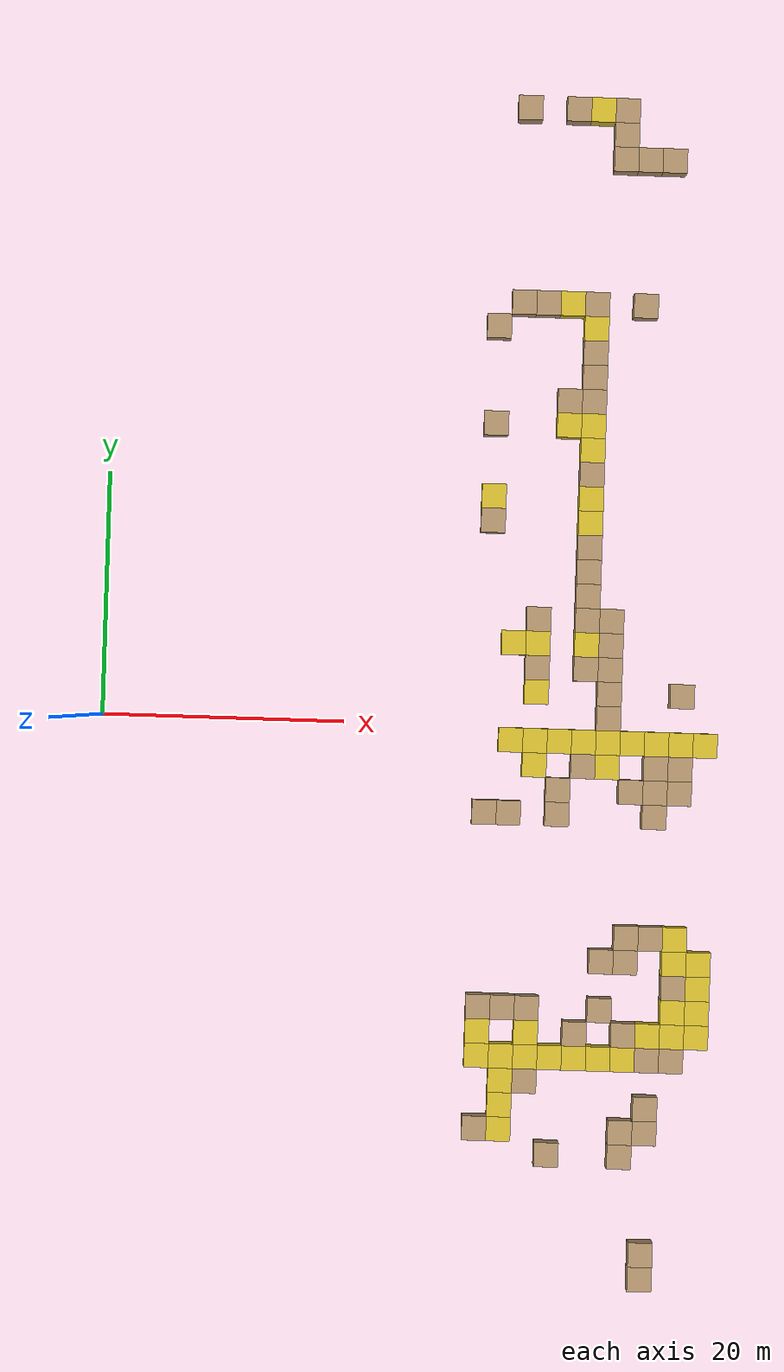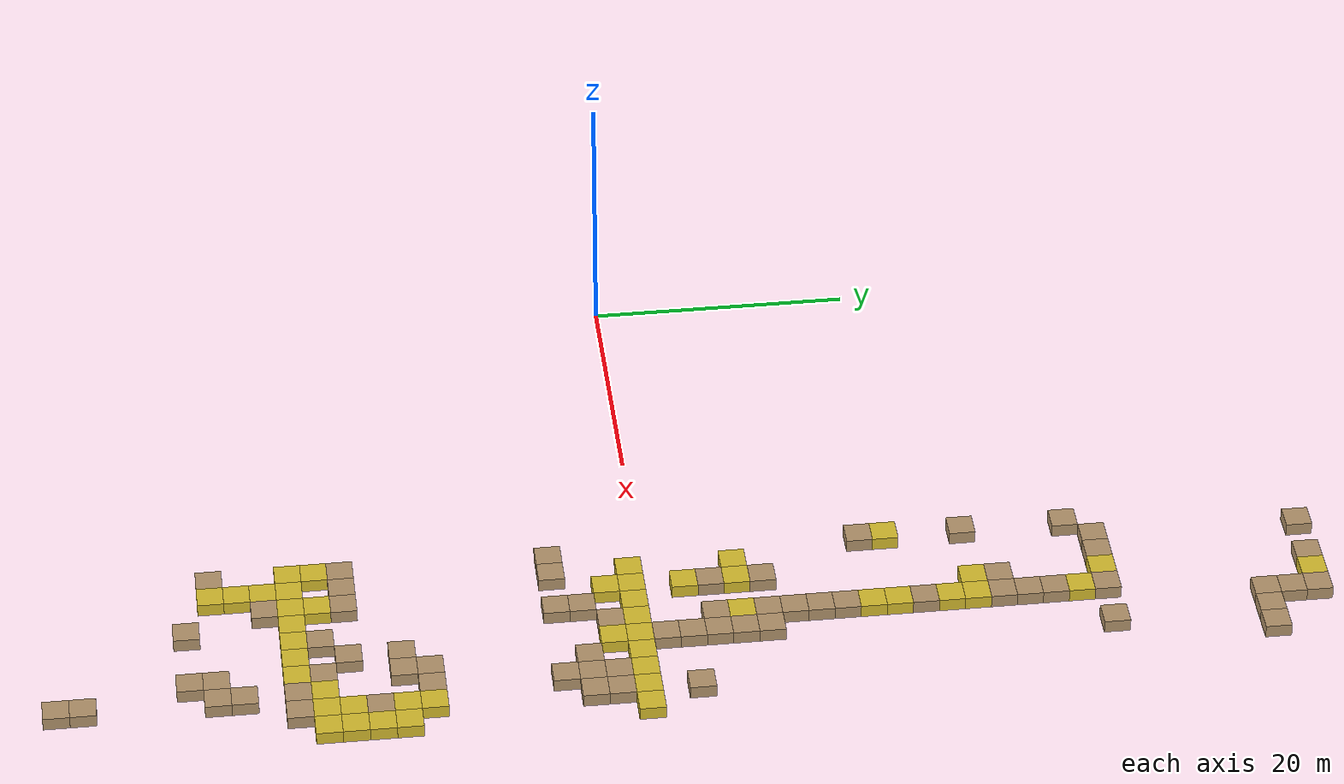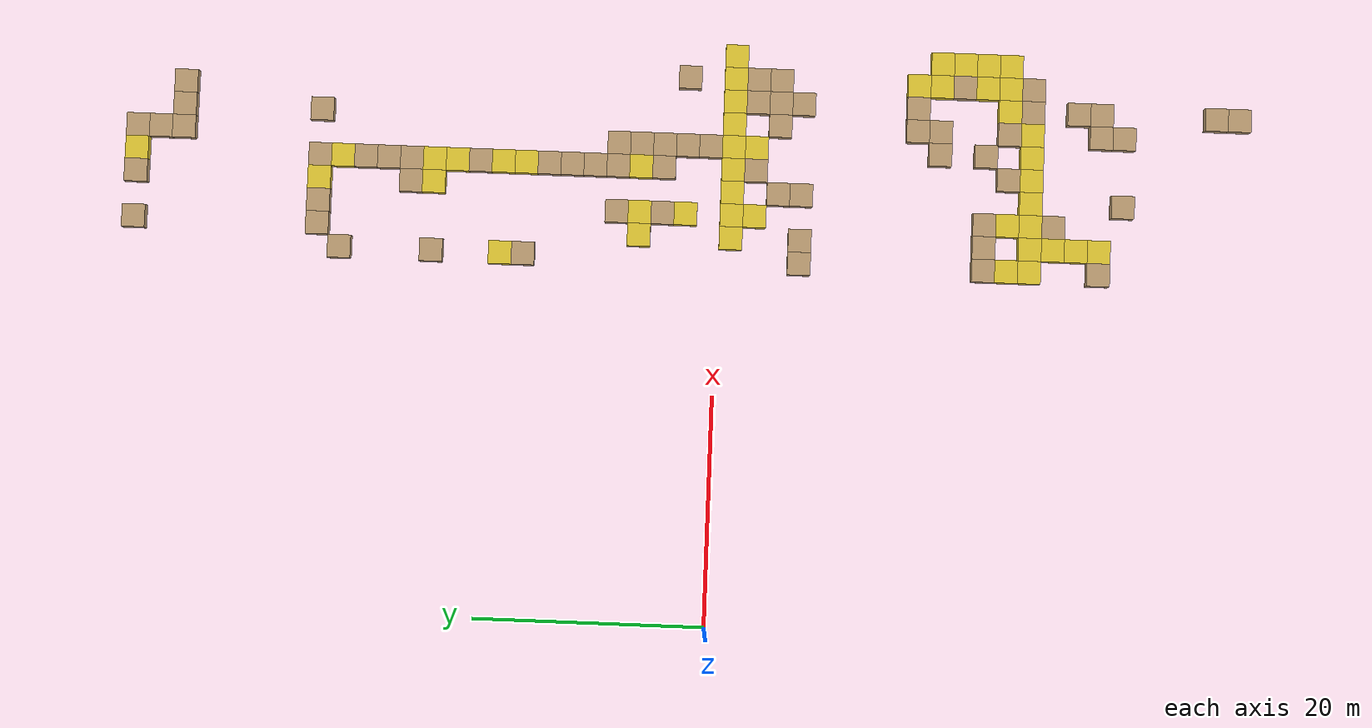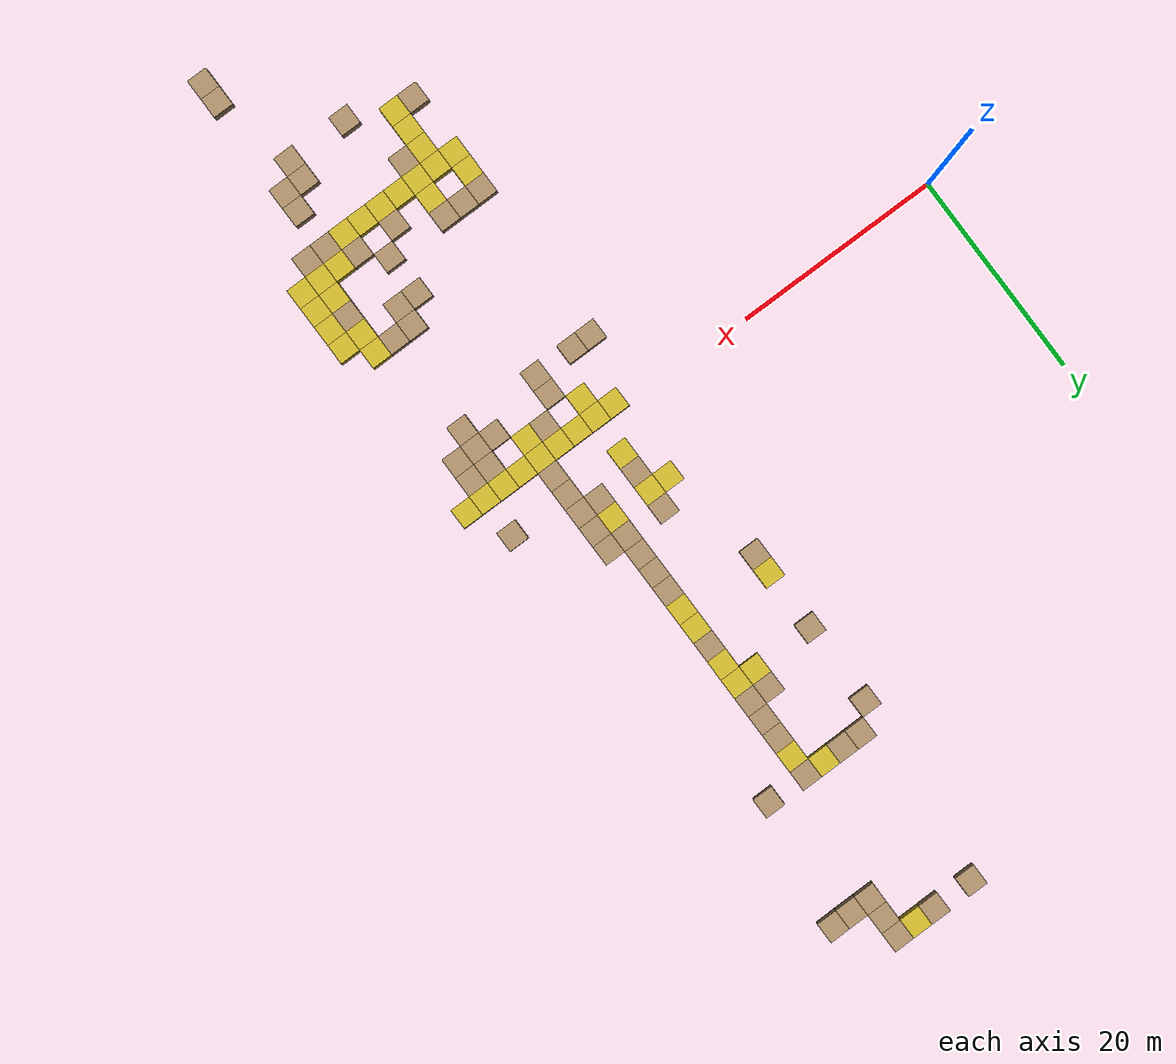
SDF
<sdf version="1.6">
 <world name="map5_factory_approx">
  <model name="map5_obstacle_blocks">
   <static>true</static>
   <link name="obs_0071_0043">
    <pose>33.790 -27.041 0.500 0 0 0</pose>
    <collision name="collision"><geometry><box><size>2.000 2.000 1.000</size></box></geometry></collision>
    <visual name="visual">
     <geometry><box><size>2.000 2.000 1.000</size></box></geometry>
     <material><ambient>0.84 0.74 0.18 1</ambient><diffuse>0.84 0.74 0.18 1</diffuse></material>
    </visual>
   </link>
   <link name="obs_0071_0026">
    <pose>33.790 6.959 0.500 0 0 0</pose>
    <collision name="collision"><geometry><box><size>2.000 2.000 1.000</size></box></geometry></collision>
    <visual name="visual">
     <geometry><box><size>2.000 2.000 1.000</size></box></geometry>
     <material><ambient>0.84 0.74 0.18 1</ambient><diffuse>0.84 0.74 0.18 1</diffuse></material>
    </visual>
   </link>
   <link name="obs_0074_0030">
    <pose>39.790 -1.041 0.500 0 0 0</pose>
    <collision name="collision"><geometry><box><size>2.000 2.000 1.000</size></box></geometry></collision>
    <visual name="visual">
     <geometry><box><size>2.000 2.000 1.000</size></box></geometry>
     <material><ambient>0.84 0.74 0.18 1</ambient><diffuse>0.84 0.74 0.18 1</diffuse></material>
    </visual>
   </link>
   <link name="obs_0072_0043">
    <pose>35.790 -27.041 0.500 0 0 0</pose>
    <collision name="collision"><geometry><box><size>2.000 2.000 1.000</size></box></geometry></collision>
    <visual name="visual">
     <geometry><box><size>2.000 2.000 1.000</size></box></geometry>
     <material><ambient>0.84 0.74 0.18 1</ambient><diffuse>0.84 0.74 0.18 1</diffuse></material>
    </visual>
   </link>
   <link name="obs_0072_0031">
    <pose>35.790 -3.041 0.500 0 0 0</pose>
    <collision name="collision"><geometry><box><size>2.000 2.000 1.000</size></box></geometry></collision>
    <visual name="visual">
     <geometry><box><size>2.000 2.000 1.000</size></box></geometry>
     <material><ambient>0.84 0.74 0.18 1</ambient><diffuse>0.84 0.74 0.18 1</diffuse></material>
    </visual>
   </link>
   <link name="obs_0072_0026">
    <pose>35.790 6.959 0.500 0 0 0</pose>
    <collision name="collision"><geometry><box><size>2.000 2.000 1.000</size></box></geometry></collision>
    <visual name="visual">
     <geometry><box><size>2.000 2.000 1.000</size></box></geometry>
     <material><ambient>0.84 0.74 0.18 1</ambient><diffuse>0.84 0.74 0.18 1</diffuse></material>
    </visual>
   </link>
   <link name="obs_0077_0042">
    <pose>45.790 -25.041 0.500 0 0 0</pose>
    <collision name="collision"><geometry><box><size>2.000 2.000 1.000</size></box></geometry></collision>
    <visual name="visual">
     <geometry><box><size>2.000 2.000 1.000</size></box></geometry>
     <material><ambient>0.84 0.74 0.18 1</ambient><diffuse>0.84 0.74 0.18 1</diffuse></material>
    </visual>
   </link>
   <link name="obs_0074_0021">
    <pose>39.790 16.959 0.500 0 0 0</pose>
    <collision name="collision"><geometry><box><size>2.000 2.000 1.000</size></box></geometry></collision>
    <visual name="visual">
     <geometry><box><size>2.000 2.000 1.000</size></box></geometry>
     <material><ambient>0.84 0.74 0.18 1</ambient><diffuse>0.84 0.74 0.18 1</diffuse></material>
    </visual>
   </link>
   <link name="obs_0075_0030">
    <pose>41.790 -1.041 0.500 0 0 0</pose>
    <collision name="collision"><geometry><box><size>2.000 2.000 1.000</size></box></geometry></collision>
    <visual name="visual">
     <geometry><box><size>2.000 2.000 1.000</size></box></geometry>
     <material><ambient>0.84 0.74 0.18 1</ambient><diffuse>0.84 0.74 0.18 1</diffuse></material>
    </visual>
   </link>
   <link name="obs_0072_0030">
    <pose>35.790 -1.041 0.500 0 0 0</pose>
    <collision name="collision"><geometry><box><size>2.000 2.000 1.000</size></box></geometry></collision>
    <visual name="visual">
     <geometry><box><size>2.000 2.000 1.000</size></box></geometry>
     <material><ambient>0.84 0.74 0.18 1</ambient><diffuse>0.84 0.74 0.18 1</diffuse></material>
    </visual>
   </link>
   <link name="obs_0074_0017">
    <pose>39.790 24.959 0.500 0 0 0</pose>
    <collision name="collision"><geometry><box><size>2.000 2.000 1.000</size></box></geometry></collision>
    <visual name="visual">
     <geometry><box><size>2.000 2.000 1.000</size></box></geometry>
     <material><ambient>0.84 0.74 0.18 1</ambient><diffuse>0.84 0.74 0.18 1</diffuse></material>
    </visual>
   </link>
   <link name="obs_0079_0030">
    <pose>49.790 -1.041 0.500 0 0 0</pose>
    <collision name="collision"><geometry><box><size>2.000 2.000 1.000</size></box></geometry></collision>
    <visual name="visual">
     <geometry><box><size>2.000 2.000 1.000</size></box></geometry>
     <material><ambient>0.84 0.74 0.18 1</ambient><diffuse>0.84 0.74 0.18 1</diffuse></material>
    </visual>
   </link>
   <link name="obs_0072_0042">
    <pose>35.790 -25.041 0.500 0 0 0</pose>
    <collision name="collision"><geometry><box><size>2.000 2.000 1.000</size></box></geometry></collision>
    <visual name="visual">
     <geometry><box><size>2.000 2.000 1.000</size></box></geometry>
     <material><ambient>0.84 0.74 0.18 1</ambient><diffuse>0.84 0.74 0.18 1</diffuse></material>
    </visual>
   </link>
   <link name="obs_0079_0041">
    <pose>49.790 -23.041 0.500 0 0 0</pose>
    <collision name="collision"><geometry><box><size>2.000 2.000 1.000</size></box></geometry></collision>
    <visual name="visual">
     <geometry><box><size>2.000 2.000 1.000</size></box></geometry>
     <material><ambient>0.84 0.74 0.18 1</ambient><diffuse>0.84 0.74 0.18 1</diffuse></material>
    </visual>
   </link>
   <link name="obs_0072_0028">
    <pose>35.790 2.959 0.500 0 0 0</pose>
    <collision name="collision"><geometry><box><size>2.000 2.000 1.000</size></box></geometry></collision>
    <visual name="visual">
     <geometry><box><size>2.000 2.000 1.000</size></box></geometry>
     <material><ambient>0.84 0.74 0.18 1</ambient><diffuse>0.84 0.74 0.18 1</diffuse></material>
    </visual>
   </link>
   <link name="obs_0075_0031">
    <pose>41.790 -3.041 0.500 0 0 0</pose>
    <collision name="collision"><geometry><box><size>2.000 2.000 1.000</size></box></geometry></collision>
    <visual name="visual">
     <geometry><box><size>2.000 2.000 1.000</size></box></geometry>
     <material><ambient>0.84 0.74 0.18 1</ambient><diffuse>0.84 0.74 0.18 1</diffuse></material>
    </visual>
   </link>
   <link name="obs_0071_0030">
    <pose>33.790 -1.041 0.500 0 0 0</pose>
    <collision name="collision"><geometry><box><size>2.000 2.000 1.000</size></box></geometry></collision>
    <visual name="visual">
     <geometry><box><size>2.000 2.000 1.000</size></box></geometry>
     <material><ambient>0.84 0.74 0.18 1</ambient><diffuse>0.84 0.74 0.18 1</diffuse></material>
    </visual>
   </link>
   <link name="obs_0079_0040">
    <pose>49.790 -21.041 0.500 0 0 0</pose>
    <collision name="collision"><geometry><box><size>2.000 2.000 1.000</size></box></geometry></collision>
    <visual name="visual">
     <geometry><box><size>2.000 2.000 1.000</size></box></geometry>
     <material><ambient>0.84 0.74 0.18 1</ambient><diffuse>0.84 0.74 0.18 1</diffuse></material>
    </visual>
   </link>
   <link name="obs_0070_0042">
    <pose>31.790 -25.041 0.500 0 0 0</pose>
    <collision name="collision"><geometry><box><size>2.000 2.000 1.000</size></box></geometry></collision>
    <visual name="visual">
     <geometry><box><size>2.000 2.000 1.000</size></box></geometry>
     <material><ambient>0.84 0.74 0.18 1</ambient><diffuse>0.84 0.74 0.18 1</diffuse></material>
    </visual>
   </link>
   <link name="obs_0079_0039">
    <pose>49.790 -19.041 0.500 0 0 0</pose>
    <collision name="collision"><geometry><box><size>2.000 2.000 1.000</size></box></geometry></collision>
    <visual name="visual">
     <geometry><box><size>2.000 2.000 1.000</size></box></geometry>
     <material><ambient>0.84 0.74 0.18 1</ambient><diffuse>0.84 0.74 0.18 1</diffuse></material>
    </visual>
   </link>
   <link name="obs_0073_0043">
    <pose>37.790 -27.041 0.500 0 0 0</pose>
    <collision name="collision"><geometry><box><size>2.000 2.000 1.000</size></box></geometry></collision>
    <visual name="visual">
     <geometry><box><size>2.000 2.000 1.000</size></box></geometry>
     <material><ambient>0.84 0.74 0.18 1</ambient><diffuse>0.84 0.74 0.18 1</diffuse></material>
    </visual>
   </link>
   <link name="obs_0075_0043">
    <pose>41.790 -27.041 0.500 0 0 0</pose>
    <collision name="collision"><geometry><box><size>2.000 2.000 1.000</size></box></geometry></collision>
    <visual name="visual">
     <geometry><box><size>2.000 2.000 1.000</size></box></geometry>
     <material><ambient>0.84 0.74 0.18 1</ambient><diffuse>0.84 0.74 0.18 1</diffuse></material>
    </visual>
   </link>
   <link name="obs_0071_0046">
    <pose>33.790 -33.041 0.500 0 0 0</pose>
    <collision name="collision"><geometry><box><size>2.000 2.000 1.000</size></box></geometry></collision>
    <visual name="visual">
     <geometry><box><size>2.000 2.000 1.000</size></box></geometry>
     <material><ambient>0.84 0.74 0.18 1</ambient><diffuse>0.84 0.74 0.18 1</diffuse></material>
    </visual>
   </link>
   <link name="obs_0073_0030">
    <pose>37.790 -1.041 0.500 0 0 0</pose>
    <collision name="collision"><geometry><box><size>2.000 2.000 1.000</size></box></geometry></collision>
    <visual name="visual">
     <geometry><box><size>2.000 2.000 1.000</size></box></geometry>
     <material><ambient>0.84 0.74 0.18 1</ambient><diffuse>0.84 0.74 0.18 1</diffuse></material>
    </visual>
   </link>
   <link name="obs_0078_0038">
    <pose>47.790 -17.041 0.500 0 0 0</pose>
    <collision name="collision"><geometry><box><size>2.000 2.000 1.000</size></box></geometry></collision>
    <visual name="visual">
     <geometry><box><size>2.000 2.000 1.000</size></box></geometry>
     <material><ambient>0.84 0.74 0.18 1</ambient><diffuse>0.84 0.74 0.18 1</diffuse></material>
    </visual>
   </link>
   <link name="obs_0079_0042">
    <pose>49.790 -25.041 0.500 0 0 0</pose>
    <collision name="collision"><geometry><box><size>2.000 2.000 1.000</size></box></geometry></collision>
    <visual name="visual">
     <geometry><box><size>2.000 2.000 1.000</size></box></geometry>
     <material><ambient>0.84 0.74 0.18 1</ambient><diffuse>0.84 0.74 0.18 1</diffuse></material>
    </visual>
   </link>
   <link name="obs_0078_0039">
    <pose>47.790 -19.041 0.500 0 0 0</pose>
    <collision name="collision"><geometry><box><size>2.000 2.000 1.000</size></box></geometry></collision>
    <visual name="visual">
     <geometry><box><size>2.000 2.000 1.000</size></box></geometry>
     <material><ambient>0.84 0.74 0.18 1</ambient><diffuse>0.84 0.74 0.18 1</diffuse></material>
    </visual>
   </link>
   <link name="obs_0076_0030">
    <pose>43.790 -1.041 0.500 0 0 0</pose>
    <collision name="collision"><geometry><box><size>2.000 2.000 1.000</size></box></geometry></collision>
    <visual name="visual">
     <geometry><box><size>2.000 2.000 1.000</size></box></geometry>
     <material><ambient>0.84 0.74 0.18 1</ambient><diffuse>0.84 0.74 0.18 1</diffuse></material>
    </visual>
   </link>
   <link name="obs_0074_0004">
    <pose>39.790 50.959 0.500 0 0 0</pose>
    <collision name="collision"><geometry><box><size>2.000 2.000 1.000</size></box></geometry></collision>
    <visual name="visual">
     <geometry><box><size>2.000 2.000 1.000</size></box></geometry>
     <material><ambient>0.84 0.74 0.18 1</ambient><diffuse>0.84 0.74 0.18 1</diffuse></material>
    </visual>
   </link>
   <link name="obs_0074_0026">
    <pose>39.790 6.959 0.500 0 0 0</pose>
    <collision name="collision"><geometry><box><size>2.000 2.000 1.000</size></box></geometry></collision>
    <visual name="visual">
     <geometry><box><size>2.000 2.000 1.000</size></box></geometry>
     <material><ambient>0.84 0.74 0.18 1</ambient><diffuse>0.84 0.74 0.18 1</diffuse></material>
    </visual>
   </link>
   <link name="obs_0073_0012">
    <pose>37.790 34.959 0.500 0 0 0</pose>
    <collision name="collision"><geometry><box><size>2.000 2.000 1.000</size></box></geometry></collision>
    <visual name="visual">
     <geometry><box><size>2.000 2.000 1.000</size></box></geometry>
     <material><ambient>0.84 0.74 0.18 1</ambient><diffuse>0.84 0.74 0.18 1</diffuse></material>
    </visual>
   </link>
   <link name="obs_0070_0043">
    <pose>31.790 -27.041 0.500 0 0 0</pose>
    <collision name="collision"><geometry><box><size>2.000 2.000 1.000</size></box></geometry></collision>
    <visual name="visual">
     <geometry><box><size>2.000 2.000 1.000</size></box></geometry>
     <material><ambient>0.84 0.74 0.18 1</ambient><diffuse>0.84 0.74 0.18 1</diffuse></material>
    </visual>
   </link>
   <link name="obs_0074_0013">
    <pose>39.790 32.959 0.500 0 0 0</pose>
    <collision name="collision"><geometry><box><size>2.000 2.000 1.000</size></box></geometry></collision>
    <visual name="visual">
     <geometry><box><size>2.000 2.000 1.000</size></box></geometry>
     <material><ambient>0.84 0.74 0.18 1</ambient><diffuse>0.84 0.74 0.18 1</diffuse></material>
    </visual>
   </link>
   <link name="obs_0071_0044">
    <pose>33.790 -29.041 0.500 0 0 0</pose>
    <collision name="collision"><geometry><box><size>2.000 2.000 1.000</size></box></geometry></collision>
    <visual name="visual">
     <geometry><box><size>2.000 2.000 1.000</size></box></geometry>
     <material><ambient>0.84 0.74 0.18 1</ambient><diffuse>0.84 0.74 0.18 1</diffuse></material>
    </visual>
   </link>
   <link name="obs_0074_0043">
    <pose>39.790 -27.041 0.500 0 0 0</pose>
    <collision name="collision"><geometry><box><size>2.000 2.000 1.000</size></box></geometry></collision>
    <visual name="visual">
     <geometry><box><size>2.000 2.000 1.000</size></box></geometry>
     <material><ambient>0.84 0.74 0.18 1</ambient><diffuse>0.84 0.74 0.18 1</diffuse></material>
    </visual>
   </link>
   <link name="obs_0078_0041">
    <pose>47.790 -23.041 0.500 0 0 0</pose>
    <collision name="collision"><geometry><box><size>2.000 2.000 1.000</size></box></geometry></collision>
    <visual name="visual">
     <geometry><box><size>2.000 2.000 1.000</size></box></geometry>
     <material><ambient>0.84 0.74 0.18 1</ambient><diffuse>0.84 0.74 0.18 1</diffuse></material>
    </visual>
   </link>
   <link name="obs_0077_0030">
    <pose>45.790 -1.041 0.500 0 0 0</pose>
    <collision name="collision"><geometry><box><size>2.000 2.000 1.000</size></box></geometry></collision>
    <visual name="visual">
     <geometry><box><size>2.000 2.000 1.000</size></box></geometry>
     <material><ambient>0.84 0.74 0.18 1</ambient><diffuse>0.84 0.74 0.18 1</diffuse></material>
    </visual>
   </link>
   <link name="obs_0078_0030">
    <pose>47.790 -1.041 0.500 0 0 0</pose>
    <collision name="collision"><geometry><box><size>2.000 2.000 1.000</size></box></geometry></collision>
    <visual name="visual">
     <geometry><box><size>2.000 2.000 1.000</size></box></geometry>
     <material><ambient>0.84 0.74 0.18 1</ambient><diffuse>0.84 0.74 0.18 1</diffuse></material>
    </visual>
   </link>
   <link name="obs_0071_0045">
    <pose>33.790 -31.041 0.500 0 0 0</pose>
    <collision name="collision"><geometry><box><size>2.000 2.000 1.000</size></box></geometry></collision>
    <visual name="visual">
     <geometry><box><size>2.000 2.000 1.000</size></box></geometry>
     <material><ambient>0.84 0.74 0.18 1</ambient><diffuse>0.84 0.74 0.18 1</diffuse></material>
    </visual>
   </link>
   <link name="obs_0078_0042">
    <pose>47.790 -25.041 0.500 0 0 0</pose>
    <collision name="collision"><geometry><box><size>2.000 2.000 1.000</size></box></geometry></collision>
    <visual name="visual">
     <geometry><box><size>2.000 2.000 1.000</size></box></geometry>
     <material><ambient>0.84 0.74 0.18 1</ambient><diffuse>0.84 0.74 0.18 1</diffuse></material>
    </visual>
   </link>
   <link name="obs_0074_0018">
    <pose>39.790 22.959 0.500 0 0 0</pose>
    <collision name="collision"><geometry><box><size>2.000 2.000 1.000</size></box></geometry></collision>
    <visual name="visual">
     <geometry><box><size>2.000 2.000 1.000</size></box></geometry>
     <material><ambient>0.84 0.74 0.18 1</ambient><diffuse>0.84 0.74 0.18 1</diffuse></material>
    </visual>
   </link>
   <link name="obs_0076_0043">
    <pose>43.790 -27.041 0.500 0 0 0</pose>
    <collision name="collision"><geometry><box><size>2.000 2.000 1.000</size></box></geometry></collision>
    <visual name="visual">
     <geometry><box><size>2.000 2.000 1.000</size></box></geometry>
     <material><ambient>0.84 0.74 0.18 1</ambient><diffuse>0.84 0.74 0.18 1</diffuse></material>
    </visual>
   </link>
   <link name="obs_0074_0020">
    <pose>39.790 18.959 0.500 0 0 0</pose>
    <collision name="collision"><geometry><box><size>2.000 2.000 1.000</size></box></geometry></collision>
    <visual name="visual">
     <geometry><box><size>2.000 2.000 1.000</size></box></geometry>
     <material><ambient>0.84 0.74 0.18 1</ambient><diffuse>0.84 0.74 0.18 1</diffuse></material>
    </visual>
   </link>
   <link name="obs_0073_0017">
    <pose>37.790 24.959 0.500 0 0 0</pose>
    <collision name="collision"><geometry><box><size>2.000 2.000 1.000</size></box></geometry></collision>
    <visual name="visual">
     <geometry><box><size>2.000 2.000 1.000</size></box></geometry>
     <material><ambient>0.84 0.74 0.18 1</ambient><diffuse>0.84 0.74 0.18 1</diffuse></material>
    </visual>
   </link>
   <link name="obs_0070_0020">
    <pose>31.790 18.959 0.500 0 0 0</pose>
    <collision name="collision"><geometry><box><size>2.000 2.000 1.000</size></box></geometry></collision>
    <visual name="visual">
     <geometry><box><size>2.000 2.000 1.000</size></box></geometry>
     <material><ambient>0.84 0.74 0.18 1</ambient><diffuse>0.84 0.74 0.18 1</diffuse></material>
    </visual>
   </link>
   <link name="obs_0072_0027">
    <pose>35.790 4.959 0.500 0 0 0</pose>
    <collision name="collision"><geometry><box><size>2.000 2.000 1.000</size></box></geometry></collision>
    <visual name="visual">
     <geometry><box><size>2.000 2.000 1.000</size></box></geometry>
     <material><ambient>0.70 0.58 0.42 1</ambient><diffuse>0.70 0.58 0.42 1</diffuse></material>
    </visual>
   </link>
   <link name="obs_0076_0032">
    <pose>43.790 -5.041 0.500 0 0 0</pose>
    <collision name="collision"><geometry><box><size>2.000 2.000 1.000</size></box></geometry></collision>
    <visual name="visual">
     <geometry><box><size>2.000 2.000 1.000</size></box></geometry>
     <material><ambient>0.70 0.58 0.42 1</ambient><diffuse>0.70 0.58 0.42 1</diffuse></material>
    </visual>
   </link>
   <link name="obs_0075_0029">
    <pose>41.790 0.959 0.500 0 0 0</pose>
    <collision name="collision"><geometry><box><size>2.000 2.000 1.000</size></box></geometry></collision>
    <visual name="visual">
     <geometry><box><size>2.000 2.000 1.000</size></box></geometry>
     <material><ambient>0.70 0.58 0.42 1</ambient><diffuse>0.70 0.58 0.42 1</diffuse></material>
    </visual>
   </link>
   <link name="obs_0074_0023">
    <pose>39.790 12.959 0.500 0 0 0</pose>
    <collision name="collision"><geometry><box><size>2.000 2.000 1.000</size></box></geometry></collision>
    <visual name="visual">
     <geometry><box><size>2.000 2.000 1.000</size></box></geometry>
     <material><ambient>0.70 0.58 0.42 1</ambient><diffuse>0.70 0.58 0.42 1</diffuse></material>
    </visual>
   </link>
   <link name="obs_0071_0012">
    <pose>33.790 34.959 0.500 0 0 0</pose>
    <collision name="collision"><geometry><box><size>2.000 2.000 1.000</size></box></geometry></collision>
    <visual name="visual">
     <geometry><box><size>2.000 2.000 1.000</size></box></geometry>
     <material><ambient>0.70 0.58 0.42 1</ambient><diffuse>0.70 0.58 0.42 1</diffuse></material>
    </visual>
   </link>
   <link name="obs_0077_0031">
    <pose>45.790 -3.041 0.500 0 0 0</pose>
    <collision name="collision"><geometry><box><size>2.000 2.000 1.000</size></box></geometry></collision>
    <visual name="visual">
     <geometry><box><size>2.000 2.000 1.000</size></box></geometry>
     <material><ambient>0.70 0.58 0.42 1</ambient><diffuse>0.70 0.58 0.42 1</diffuse></material>
    </visual>
   </link>
   <link name="obs_0074_0012">
    <pose>39.790 34.959 0.500 0 0 0</pose>
    <collision name="collision"><geometry><box><size>2.000 2.000 1.000</size></box></geometry></collision>
    <visual name="visual">
     <geometry><box><size>2.000 2.000 1.000</size></box></geometry>
     <material><ambient>0.70 0.58 0.42 1</ambient><diffuse>0.70 0.58 0.42 1</diffuse></material>
    </visual>
   </link>
   <link name="obs_0073_0032">
    <pose>37.790 -5.041 0.500 0 0 0</pose>
    <collision name="collision"><geometry><box><size>2.000 2.000 1.000</size></box></geometry></collision>
    <visual name="visual">
     <geometry><box><size>2.000 2.000 1.000</size></box></geometry>
     <material><ambient>0.70 0.58 0.42 1</ambient><diffuse>0.70 0.58 0.42 1</diffuse></material>
    </visual>
   </link>
   <link name="obs_0072_0012">
    <pose>35.790 34.959 0.500 0 0 0</pose>
    <collision name="collision"><geometry><box><size>2.000 2.000 1.000</size></box></geometry></collision>
    <visual name="visual">
     <geometry><box><size>2.000 2.000 1.000</size></box></geometry>
     <material><ambient>0.70 0.58 0.42 1</ambient><diffuse>0.70 0.58 0.42 1</diffuse></material>
    </visual>
   </link>
   <link name="obs_0077_0046">
    <pose>45.790 -33.041 0.500 0 0 0</pose>
    <collision name="collision"><geometry><box><size>2.000 2.000 1.000</size></box></geometry></collision>
    <visual name="visual">
     <geometry><box><size>2.000 2.000 1.000</size></box></geometry>
     <material><ambient>0.70 0.58 0.42 1</ambient><diffuse>0.70 0.58 0.42 1</diffuse></material>
    </visual>
   </link>
   <link name="obs_0071_0041">
    <pose>33.790 -23.041 0.500 0 0 0</pose>
    <collision name="collision"><geometry><box><size>2.000 2.000 1.000</size></box></geometry></collision>
    <visual name="visual">
     <geometry><box><size>2.000 2.000 1.000</size></box></geometry>
     <material><ambient>0.70 0.58 0.42 1</ambient><diffuse>0.70 0.58 0.42 1</diffuse></material>
    </visual>
   </link>
   <link name="obs_0071_0004">
    <pose>33.790 50.959 0.500 0 0 0</pose>
    <collision name="collision"><geometry><box><size>2.000 2.000 1.000</size></box></geometry></collision>
    <visual name="visual">
     <geometry><box><size>2.000 2.000 1.000</size></box></geometry>
     <material><ambient>0.70 0.58 0.42 1</ambient><diffuse>0.70 0.58 0.42 1</diffuse></material>
    </visual>
   </link>
   <link name="obs_0074_0042">
    <pose>39.790 -25.041 0.500 0 0 0</pose>
    <collision name="collision"><geometry><box><size>2.000 2.000 1.000</size></box></geometry></collision>
    <visual name="visual">
     <geometry><box><size>2.000 2.000 1.000</size></box></geometry>
     <material><ambient>0.70 0.58 0.42 1</ambient><diffuse>0.70 0.58 0.42 1</diffuse></material>
    </visual>
   </link>
   <link name="obs_0070_0046">
    <pose>31.790 -33.041 0.500 0 0 0</pose>
    <collision name="collision"><geometry><box><size>2.000 2.000 1.000</size></box></geometry></collision>
    <visual name="visual">
     <geometry><box><size>2.000 2.000 1.000</size></box></geometry>
     <material><ambient>0.70 0.58 0.42 1</ambient><diffuse>0.70 0.58 0.42 1</diffuse></material>
    </visual>
   </link>
   <link name="obs_0075_0028">
    <pose>41.790 2.959 0.500 0 0 0</pose>
    <collision name="collision"><geometry><box><size>2.000 2.000 1.000</size></box></geometry></collision>
    <visual name="visual">
     <geometry><box><size>2.000 2.000 1.000</size></box></geometry>
     <material><ambient>0.70 0.58 0.42 1</ambient><diffuse>0.70 0.58 0.42 1</diffuse></material>
    </visual>
   </link>
   <link name="obs_0074_0024">
    <pose>39.790 10.959 0.500 0 0 0</pose>
    <collision name="collision"><geometry><box><size>2.000 2.000 1.000</size></box></geometry></collision>
    <visual name="visual">
     <geometry><box><size>2.000 2.000 1.000</size></box></geometry>
     <material><ambient>0.70 0.58 0.42 1</ambient><diffuse>0.70 0.58 0.42 1</diffuse></material>
    </visual>
   </link>
   <link name="obs_0074_0014">
    <pose>39.790 30.959 0.500 0 0 0</pose>
    <collision name="collision"><geometry><box><size>2.000 2.000 1.000</size></box></geometry></collision>
    <visual name="visual">
     <geometry><box><size>2.000 2.000 1.000</size></box></geometry>
     <material><ambient>0.70 0.58 0.42 1</ambient><diffuse>0.70 0.58 0.42 1</diffuse></material>
    </visual>
   </link>
   <link name="obs_0074_0025">
    <pose>39.790 8.959 0.500 0 0 0</pose>
    <collision name="collision"><geometry><box><size>2.000 2.000 1.000</size></box></geometry></collision>
    <visual name="visual">
     <geometry><box><size>2.000 2.000 1.000</size></box></geometry>
     <material><ambient>0.70 0.58 0.42 1</ambient><diffuse>0.70 0.58 0.42 1</diffuse></material>
    </visual>
   </link>
   <link name="obs_0077_0051">
    <pose>45.790 -43.041 0.500 0 0 0</pose>
    <collision name="collision"><geometry><box><size>2.000 2.000 1.000</size></box></geometry></collision>
    <visual name="visual">
     <geometry><box><size>2.000 2.000 1.000</size></box></geometry>
     <material><ambient>0.70 0.58 0.42 1</ambient><diffuse>0.70 0.58 0.42 1</diffuse></material>
    </visual>
   </link>
   <link name="obs_0074_0015">
    <pose>39.790 28.959 0.500 0 0 0</pose>
    <collision name="collision"><geometry><box><size>2.000 2.000 1.000</size></box></geometry></collision>
    <visual name="visual">
     <geometry><box><size>2.000 2.000 1.000</size></box></geometry>
     <material><ambient>0.70 0.58 0.42 1</ambient><diffuse>0.70 0.58 0.42 1</diffuse></material>
    </visual>
   </link>
   <link name="obs_0070_0033">
    <pose>31.790 -7.041 0.500 0 0 0</pose>
    <collision name="collision"><geometry><box><size>2.000 2.000 1.000</size></box></geometry></collision>
    <visual name="visual">
     <geometry><box><size>2.000 2.000 1.000</size></box></geometry>
     <material><ambient>0.70 0.58 0.42 1</ambient><diffuse>0.70 0.58 0.42 1</diffuse></material>
    </visual>
   </link>
   <link name="obs_0078_0040">
    <pose>47.790 -21.041 0.500 0 0 0</pose>
    <collision name="collision"><geometry><box><size>2.000 2.000 1.000</size></box></geometry></collision>
    <visual name="visual">
     <geometry><box><size>2.000 2.000 1.000</size></box></geometry>
     <material><ambient>0.70 0.58 0.42 1</ambient><diffuse>0.70 0.58 0.42 1</diffuse></material>
    </visual>
   </link>
   <link name="obs_0076_0046">
    <pose>43.790 -33.041 0.500 0 0 0</pose>
    <collision name="collision"><geometry><box><size>2.000 2.000 1.000</size></box></geometry></collision>
    <visual name="visual">
     <geometry><box><size>2.000 2.000 1.000</size></box></geometry>
     <material><ambient>0.70 0.58 0.42 1</ambient><diffuse>0.70 0.58 0.42 1</diffuse></material>
    </visual>
   </link>
   <link name="obs_0075_0027">
    <pose>41.790 4.959 0.500 0 0 0</pose>
    <collision name="collision"><geometry><box><size>2.000 2.000 1.000</size></box></geometry></collision>
    <visual name="visual">
     <geometry><box><size>2.000 2.000 1.000</size></box></geometry>
     <material><ambient>0.70 0.58 0.42 1</ambient><diffuse>0.70 0.58 0.42 1</diffuse></material>
    </visual>
   </link>
   <link name="obs_0074_0016">
    <pose>39.790 26.959 0.500 0 0 0</pose>
    <collision name="collision"><geometry><box><size>2.000 2.000 1.000</size></box></geometry></collision>
    <visual name="visual">
     <geometry><box><size>2.000 2.000 1.000</size></box></geometry>
     <material><ambient>0.70 0.58 0.42 1</ambient><diffuse>0.70 0.58 0.42 1</diffuse></material>
    </visual>
   </link>
   <link name="obs_0074_0019">
    <pose>39.790 20.959 0.500 0 0 0</pose>
    <collision name="collision"><geometry><box><size>2.000 2.000 1.000</size></box></geometry></collision>
    <visual name="visual">
     <geometry><box><size>2.000 2.000 1.000</size></box></geometry>
     <material><ambient>0.70 0.58 0.42 1</ambient><diffuse>0.70 0.58 0.42 1</diffuse></material>
    </visual>
   </link>
   <link name="obs_0073_0016">
    <pose>37.790 26.959 0.500 0 0 0</pose>
    <collision name="collision"><geometry><box><size>2.000 2.000 1.000</size></box></geometry></collision>
    <visual name="visual">
     <geometry><box><size>2.000 2.000 1.000</size></box></geometry>
     <material><ambient>0.70 0.58 0.42 1</ambient><diffuse>0.70 0.58 0.42 1</diffuse></material>
    </visual>
   </link>
   <link name="obs_0074_0022">
    <pose>39.790 14.959 0.500 0 0 0</pose>
    <collision name="collision"><geometry><box><size>2.000 2.000 1.000</size></box></geometry></collision>
    <visual name="visual">
     <geometry><box><size>2.000 2.000 1.000</size></box></geometry>
     <material><ambient>0.70 0.58 0.42 1</ambient><diffuse>0.70 0.58 0.42 1</diffuse></material>
    </visual>
   </link>
   <link name="obs_0077_0043">
    <pose>45.790 -27.041 0.500 0 0 0</pose>
    <collision name="collision"><geometry><box><size>2.000 2.000 1.000</size></box></geometry></collision>
    <visual name="visual">
     <geometry><box><size>2.000 2.000 1.000</size></box></geometry>
     <material><ambient>0.70 0.58 0.42 1</ambient><diffuse>0.70 0.58 0.42 1</diffuse></material>
    </visual>
   </link>
   <link name="obs_0070_0021">
    <pose>31.790 16.959 0.500 0 0 0</pose>
    <collision name="collision"><geometry><box><size>2.000 2.000 1.000</size></box></geometry></collision>
    <visual name="visual">
     <geometry><box><size>2.000 2.000 1.000</size></box></geometry>
     <material><ambient>0.70 0.58 0.42 1</ambient><diffuse>0.70 0.58 0.42 1</diffuse></material>
    </visual>
   </link>
   <link name="obs_0076_0006">
    <pose>43.790 46.959 0.500 0 0 0</pose>
    <collision name="collision"><geometry><box><size>2.000 2.000 1.000</size></box></geometry></collision>
    <visual name="visual">
     <geometry><box><size>2.000 2.000 1.000</size></box></geometry>
     <material><ambient>0.70 0.58 0.42 1</ambient><diffuse>0.70 0.58 0.42 1</diffuse></material>
    </visual>
   </link>
   <link name="obs_0076_0039">
    <pose>43.790 -19.041 0.500 0 0 0</pose>
    <collision name="collision"><geometry><box><size>2.000 2.000 1.000</size></box></geometry></collision>
    <visual name="visual">
     <geometry><box><size>2.000 2.000 1.000</size></box></geometry>
     <material><ambient>0.70 0.58 0.42 1</ambient><diffuse>0.70 0.58 0.42 1</diffuse></material>
    </visual>
   </link>
   <link name="obs_0071_0033">
    <pose>33.790 -7.041 0.500 0 0 0</pose>
    <collision name="collision"><geometry><box><size>2.000 2.000 1.000</size></box></geometry></collision>
    <visual name="visual">
     <geometry><box><size>2.000 2.000 1.000</size></box></geometry>
     <material><ambient>0.70 0.58 0.42 1</ambient><diffuse>0.70 0.58 0.42 1</diffuse></material>
    </visual>
   </link>
   <link name="obs_0078_0032">
    <pose>47.790 -5.041 0.500 0 0 0</pose>
    <collision name="collision"><geometry><box><size>2.000 2.000 1.000</size></box></geometry></collision>
    <visual name="visual">
     <geometry><box><size>2.000 2.000 1.000</size></box></geometry>
     <material><ambient>0.70 0.58 0.42 1</ambient><diffuse>0.70 0.58 0.42 1</diffuse></material>
    </visual>
   </link>
   <link name="obs_0072_0041">
    <pose>35.790 -23.041 0.500 0 0 0</pose>
    <collision name="collision"><geometry><box><size>2.000 2.000 1.000</size></box></geometry></collision>
    <visual name="visual">
     <geometry><box><size>2.000 2.000 1.000</size></box></geometry>
     <material><ambient>0.70 0.58 0.42 1</ambient><diffuse>0.70 0.58 0.42 1</diffuse></material>
    </visual>
   </link>
   <link name="obs_0077_0033">
    <pose>45.790 -7.041 0.500 0 0 0</pose>
    <collision name="collision"><geometry><box><size>2.000 2.000 1.000</size></box></geometry></collision>
    <visual name="visual">
     <geometry><box><size>2.000 2.000 1.000</size></box></geometry>
     <material><ambient>0.70 0.58 0.42 1</ambient><diffuse>0.70 0.58 0.42 1</diffuse></material>
    </visual>
   </link>
   <link name="obs_0073_0047">
    <pose>37.790 -35.041 0.500 0 0 0</pose>
    <collision name="collision"><geometry><box><size>2.000 2.000 1.000</size></box></geometry></collision>
    <visual name="visual">
     <geometry><box><size>2.000 2.000 1.000</size></box></geometry>
     <material><ambient>0.70 0.58 0.42 1</ambient><diffuse>0.70 0.58 0.42 1</diffuse></material>
    </visual>
   </link>
   <link name="obs_0076_0042">
    <pose>43.790 -25.041 0.500 0 0 0</pose>
    <collision name="collision"><geometry><box><size>2.000 2.000 1.000</size></box></geometry></collision>
    <visual name="visual">
     <geometry><box><size>2.000 2.000 1.000</size></box></geometry>
     <material><ambient>0.70 0.58 0.42 1</ambient><diffuse>0.70 0.58 0.42 1</diffuse></material>
    </visual>
   </link>
   <link name="obs_0075_0026">
    <pose>41.790 6.959 0.500 0 0 0</pose>
    <collision name="collision"><geometry><box><size>2.000 2.000 1.000</size></box></geometry></collision>
    <visual name="visual">
     <geometry><box><size>2.000 2.000 1.000</size></box></geometry>
     <material><ambient>0.70 0.58 0.42 1</ambient><diffuse>0.70 0.58 0.42 1</diffuse></material>
    </visual>
   </link>
   <link name="obs_0078_0043">
    <pose>47.790 -27.041 0.500 0 0 0</pose>
    <collision name="collision"><geometry><box><size>2.000 2.000 1.000</size></box></geometry></collision>
    <visual name="visual">
     <geometry><box><size>2.000 2.000 1.000</size></box></geometry>
     <material><ambient>0.70 0.58 0.42 1</ambient><diffuse>0.70 0.58 0.42 1</diffuse></material>
    </visual>
   </link>
   <link name="obs_0075_0025">
    <pose>41.790 8.959 0.500 0 0 0</pose>
    <collision name="collision"><geometry><box><size>2.000 2.000 1.000</size></box></geometry></collision>
    <visual name="visual">
     <geometry><box><size>2.000 2.000 1.000</size></box></geometry>
     <material><ambient>0.70 0.58 0.42 1</ambient><diffuse>0.70 0.58 0.42 1</diffuse></material>
    </visual>
   </link>
   <link name="obs_0077_0052">
    <pose>45.790 -45.041 0.500 0 0 0</pose>
    <collision name="collision"><geometry><box><size>2.000 2.000 1.000</size></box></geometry></collision>
    <visual name="visual">
     <geometry><box><size>2.000 2.000 1.000</size></box></geometry>
     <material><ambient>0.70 0.58 0.42 1</ambient><diffuse>0.70 0.58 0.42 1</diffuse></material>
    </visual>
   </link>
   <link name="obs_0075_0004">
    <pose>41.790 50.959 0.500 0 0 0</pose>
    <collision name="collision"><geometry><box><size>2.000 2.000 1.000</size></box></geometry></collision>
    <visual name="visual">
     <geometry><box><size>2.000 2.000 1.000</size></box></geometry>
     <material><ambient>0.70 0.58 0.42 1</ambient><diffuse>0.70 0.58 0.42 1</diffuse></material>
    </visual>
   </link>
   <link name="obs_0070_0017">
    <pose>31.790 24.959 0.500 0 0 0</pose>
    <collision name="collision"><geometry><box><size>2.000 2.000 1.000</size></box></geometry></collision>
    <visual name="visual">
     <geometry><box><size>2.000 2.000 1.000</size></box></geometry>
     <material><ambient>0.70 0.58 0.42 1</ambient><diffuse>0.70 0.58 0.42 1</diffuse></material>
    </visual>
   </link>
   <link name="obs_0072_0025">
    <pose>35.790 8.959 0.500 0 0 0</pose>
    <collision name="collision"><geometry><box><size>2.000 2.000 1.000</size></box></geometry></collision>
    <visual name="visual">
     <geometry><box><size>2.000 2.000 1.000</size></box></geometry>
     <material><ambient>0.70 0.58 0.42 1</ambient><diffuse>0.70 0.58 0.42 1</diffuse></material>
    </visual>
   </link>
   <link name="obs_0070_0013">
    <pose>31.790 32.959 0.500 0 0 0</pose>
    <collision name="collision"><geometry><box><size>2.000 2.000 1.000</size></box></geometry></collision>
    <visual name="visual">
     <geometry><box><size>2.000 2.000 1.000</size></box></geometry>
     <material><ambient>0.70 0.58 0.42 1</ambient><diffuse>0.70 0.58 0.42 1</diffuse></material>
    </visual>
   </link>
   <link name="obs_0078_0031">
    <pose>47.790 -3.041 0.500 0 0 0</pose>
    <collision name="collision"><geometry><box><size>2.000 2.000 1.000</size></box></geometry></collision>
    <visual name="visual">
     <geometry><box><size>2.000 2.000 1.000</size></box></geometry>
     <material><ambient>0.70 0.58 0.42 1</ambient><diffuse>0.70 0.58 0.42 1</diffuse></material>
    </visual>
   </link>
   <link name="obs_0073_0004">
    <pose>37.790 50.959 0.500 0 0 0</pose>
    <collision name="collision"><geometry><box><size>2.000 2.000 1.000</size></box></geometry></collision>
    <visual name="visual">
     <geometry><box><size>2.000 2.000 1.000</size></box></geometry>
     <material><ambient>0.70 0.58 0.42 1</ambient><diffuse>0.70 0.58 0.42 1</diffuse></material>
    </visual>
   </link>
   <link name="obs_0073_0033">
    <pose>37.790 -7.041 0.500 0 0 0</pose>
    <collision name="collision"><geometry><box><size>2.000 2.000 1.000</size></box></geometry></collision>
    <visual name="visual">
     <geometry><box><size>2.000 2.000 1.000</size></box></geometry>
     <material><ambient>0.70 0.58 0.42 1</ambient><diffuse>0.70 0.58 0.42 1</diffuse></material>
    </visual>
   </link>
   <link name="obs_0077_0006">
    <pose>45.790 46.959 0.500 0 0 0</pose>
    <collision name="collision"><geometry><box><size>2.000 2.000 1.000</size></box></geometry></collision>
    <visual name="visual">
     <geometry><box><size>2.000 2.000 1.000</size></box></geometry>
     <material><ambient>0.70 0.58 0.42 1</ambient><diffuse>0.70 0.58 0.42 1</diffuse></material>
    </visual>
   </link>
   <link name="obs_0076_0047">
    <pose>43.790 -35.041 0.500 0 0 0</pose>
    <collision name="collision"><geometry><box><size>2.000 2.000 1.000</size></box></geometry></collision>
    <visual name="visual">
     <geometry><box><size>2.000 2.000 1.000</size></box></geometry>
     <material><ambient>0.70 0.58 0.42 1</ambient><diffuse>0.70 0.58 0.42 1</diffuse></material>
    </visual>
   </link>
   <link name="obs_0075_0039">
    <pose>41.790 -19.041 0.500 0 0 0</pose>
    <collision name="collision"><geometry><box><size>2.000 2.000 1.000</size></box></geometry></collision>
    <visual name="visual">
     <geometry><box><size>2.000 2.000 1.000</size></box></geometry>
     <material><ambient>0.70 0.58 0.42 1</ambient><diffuse>0.70 0.58 0.42 1</diffuse></material>
    </visual>
   </link>
   <link name="obs_0075_0005">
    <pose>41.790 48.959 0.500 0 0 0</pose>
    <collision name="collision"><geometry><box><size>2.000 2.000 1.000</size></box></geometry></collision>
    <visual name="visual">
     <geometry><box><size>2.000 2.000 1.000</size></box></geometry>
     <material><ambient>0.70 0.58 0.42 1</ambient><diffuse>0.70 0.58 0.42 1</diffuse></material>
    </visual>
   </link>
   <link name="obs_0074_0027">
    <pose>39.790 4.959 0.500 0 0 0</pose>
    <collision name="collision"><geometry><box><size>2.000 2.000 1.000</size></box></geometry></collision>
    <visual name="visual">
     <geometry><box><size>2.000 2.000 1.000</size></box></geometry>
     <material><ambient>0.70 0.58 0.42 1</ambient><diffuse>0.70 0.58 0.42 1</diffuse></material>
    </visual>
   </link>
   <link name="obs_0072_0044">
    <pose>35.790 -29.041 0.500 0 0 0</pose>
    <collision name="collision"><geometry><box><size>2.000 2.000 1.000</size></box></geometry></collision>
    <visual name="visual">
     <geometry><box><size>2.000 2.000 1.000</size></box></geometry>
     <material><ambient>0.70 0.58 0.42 1</ambient><diffuse>0.70 0.58 0.42 1</diffuse></material>
    </visual>
   </link>
   <link name="obs_0078_0028">
    <pose>47.790 2.959 0.500 0 0 0</pose>
    <collision name="collision"><geometry><box><size>2.000 2.000 1.000</size></box></geometry></collision>
    <visual name="visual">
     <geometry><box><size>2.000 2.000 1.000</size></box></geometry>
     <material><ambient>0.70 0.58 0.42 1</ambient><diffuse>0.70 0.58 0.42 1</diffuse></material>
    </visual>
   </link>
   <link name="obs_0077_0045">
    <pose>45.790 -31.041 0.500 0 0 0</pose>
    <collision name="collision"><geometry><box><size>2.000 2.000 1.000</size></box></geometry></collision>
    <visual name="visual">
     <geometry><box><size>2.000 2.000 1.000</size></box></geometry>
     <material><ambient>0.70 0.58 0.42 1</ambient><diffuse>0.70 0.58 0.42 1</diffuse></material>
    </visual>
   </link>
   <link name="obs_0075_0041">
    <pose>41.790 -23.041 0.500 0 0 0</pose>
    <collision name="collision"><geometry><box><size>2.000 2.000 1.000</size></box></geometry></collision>
    <visual name="visual">
     <geometry><box><size>2.000 2.000 1.000</size></box></geometry>
     <material><ambient>0.70 0.58 0.42 1</ambient><diffuse>0.70 0.58 0.42 1</diffuse></material>
    </visual>
   </link>
   <link name="obs_0075_0006">
    <pose>41.790 46.959 0.500 0 0 0</pose>
    <collision name="collision"><geometry><box><size>2.000 2.000 1.000</size></box></geometry></collision>
    <visual name="visual">
     <geometry><box><size>2.000 2.000 1.000</size></box></geometry>
     <material><ambient>0.70 0.58 0.42 1</ambient><diffuse>0.70 0.58 0.42 1</diffuse></material>
    </visual>
   </link>
   <link name="obs_0074_0031">
    <pose>39.790 -3.041 0.500 0 0 0</pose>
    <collision name="collision"><geometry><box><size>2.000 2.000 1.000</size></box></geometry></collision>
    <visual name="visual">
     <geometry><box><size>2.000 2.000 1.000</size></box></geometry>
     <material><ambient>0.70 0.58 0.42 1</ambient><diffuse>0.70 0.58 0.42 1</diffuse></material>
    </visual>
   </link>
   <link name="obs_0077_0038">
    <pose>45.790 -17.041 0.500 0 0 0</pose>
    <collision name="collision"><geometry><box><size>2.000 2.000 1.000</size></box></geometry></collision>
    <visual name="visual">
     <geometry><box><size>2.000 2.000 1.000</size></box></geometry>
     <material><ambient>0.70 0.58 0.42 1</ambient><diffuse>0.70 0.58 0.42 1</diffuse></material>
    </visual>
   </link>
   <link name="obs_0077_0032">
    <pose>45.790 -5.041 0.500 0 0 0</pose>
    <collision name="collision"><geometry><box><size>2.000 2.000 1.000</size></box></geometry></collision>
    <visual name="visual">
     <geometry><box><size>2.000 2.000 1.000</size></box></geometry>
     <material><ambient>0.70 0.58 0.42 1</ambient><diffuse>0.70 0.58 0.42 1</diffuse></material>
    </visual>
   </link>
   <link name="obs_0076_0038">
    <pose>43.790 -17.041 0.500 0 0 0</pose>
    <collision name="collision"><geometry><box><size>2.000 2.000 1.000</size></box></geometry></collision>
    <visual name="visual">
     <geometry><box><size>2.000 2.000 1.000</size></box></geometry>
     <material><ambient>0.70 0.58 0.42 1</ambient><diffuse>0.70 0.58 0.42 1</diffuse></material>
    </visual>
   </link>
   <link name="obs_0076_0012">
    <pose>43.790 34.959 0.500 0 0 0</pose>
    <collision name="collision"><geometry><box><size>2.000 2.000 1.000</size></box></geometry></collision>
    <visual name="visual">
     <geometry><box><size>2.000 2.000 1.000</size></box></geometry>
     <material><ambient>0.70 0.58 0.42 1</ambient><diffuse>0.70 0.58 0.42 1</diffuse></material>
    </visual>
   </link>
   <link name="obs_0070_0041">
    <pose>31.790 -23.041 0.500 0 0 0</pose>
    <collision name="collision"><geometry><box><size>2.000 2.000 1.000</size></box></geometry></collision>
    <visual name="visual">
     <geometry><box><size>2.000 2.000 1.000</size></box></geometry>
     <material><ambient>0.70 0.58 0.42 1</ambient><diffuse>0.70 0.58 0.42 1</diffuse></material>
    </visual>
   </link>
  </model>
 </world>
</sdf>
